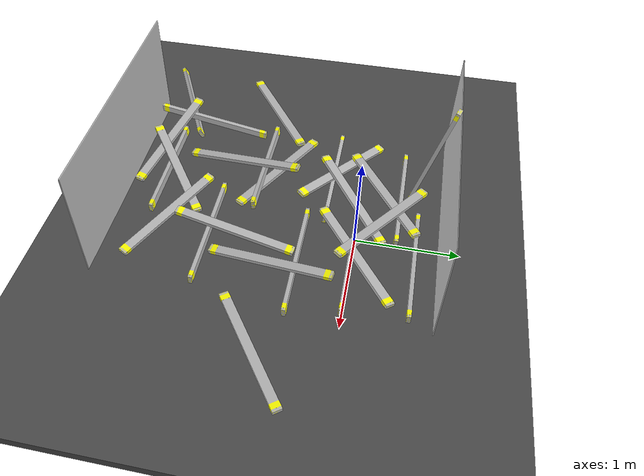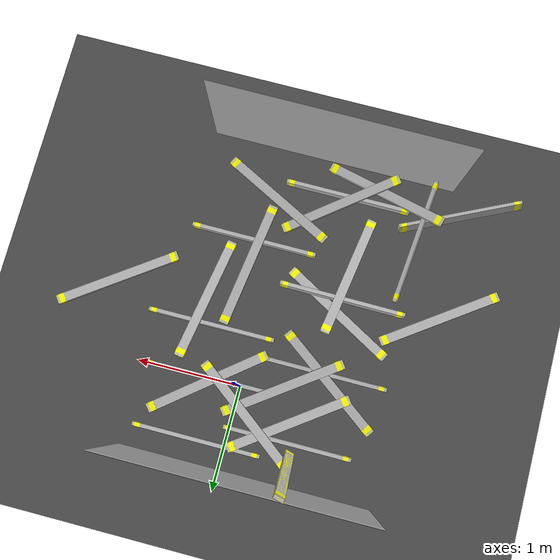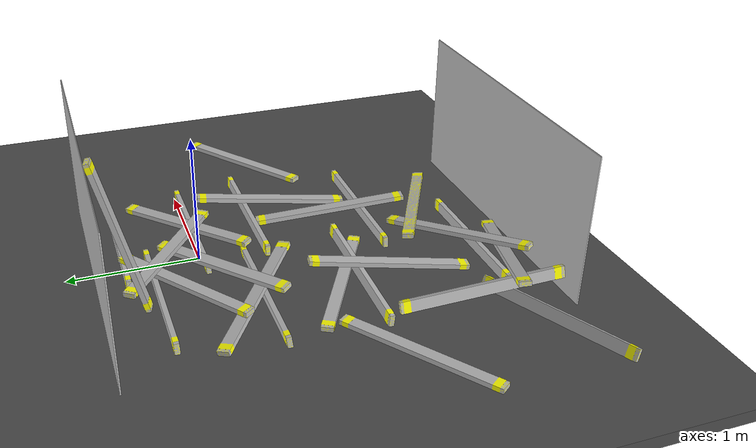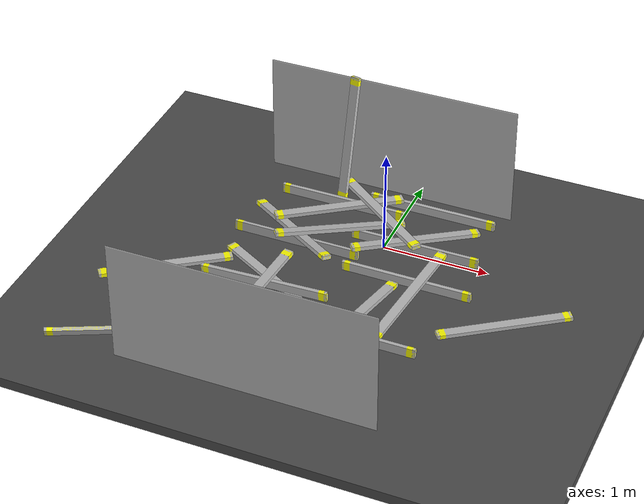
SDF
<sdf version="1.6">
 <world name="default">
  <light name="sun" type="directional">
   <pose>0 0 10 0 -0 0</pose>
   <diffuse>0.8 0.8 0.8 1</diffuse>
   <specular>0.1 0.1 0.1 1</specular>
   <attenuation>
    <range>1000</range>
    <constant>0.9</constant>
    <linear>0.01</linear>
    <quadratic>0.001</quadratic>
   </attenuation>
   <direction>-0.5 0.5 -1</direction>
  </light>
  <model name="ground_plane">
   <static>1</static>
   <link name="link">
    <collision name="collision">
     <geometry><plane><normal>0 0 1</normal><size>100 100</size></plane></geometry>
     <surface><friction><ode><mu>100</mu><mu2>50</mu2></ode></friction></surface>
    </collision>
    <visual name="visual">
     <cast_shadows>0</cast_shadows>
     <geometry><plane><normal>0 0 1</normal><size>100 100</size></plane></geometry>
     <material>
      <script><uri>file://media/materials/scripts/gazebo.material</uri><name>Gazebo/Grey</name></script>
     </material>
    </visual>
   </link>
  </model>
  <gravity>0 0 -9.8</gravity>
  <magnetic_field>6e-06 2.3e-05 -4.2e-05</magnetic_field>
  <atmosphere type="adiabatic"/>
  <physics name="default_physics" default="0" type="ode">
   <max_step_size>0.001</max_step_size>
   <real_time_factor>1</real_time_factor>
   <real_time_update_rate>1000</real_time_update_rate>
  </physics>
  <scene><ambient>0.4 0.4 0.4 1</ambient><background>0.7 0.7 0.7 1</background><shadows>1</shadows></scene>
  <spherical_coordinates>
   <surface_model>EARTH_WGS84</surface_model>
   <latitude_deg>0</latitude_deg>
   <longitude_deg>0</longitude_deg>
   <elevation>0</elevation>
   <heading_deg>0</heading_deg>
  </spherical_coordinates>
  <model name="asphalt_plane">
   <static>1</static>
   <link name="link">
    <collision name="collision"><geometry><box><size>20 20 0.1</size></box></geometry></collision>
    <visual name="visual">
     <cast_shadows>0</cast_shadows>
     <geometry><box><size>20 20 0.1</size></box></geometry>
     <material>
      <script>
       <uri>model://asphalt_plane/materials/scripts</uri>
       <uri>model://asphalt_plane/materials/textures</uri>
       <name>vrc/asphalt</name>
      </script>
     </material>
    </visual>
   </link>
   <pose>-0.246081 -0.022375 0 0 -0 0</pose>
  </model>
  <model name="nist_maze_wall_240">
   <static>1</static>
   <link name="nist__maze_wall_240_link">
    <collision name="collision">
     <geometry>
      <mesh><uri>model://nist_maze_wall_240/meshes/nist_maze_wall_240.dae</uri><scale>1 1 1</scale></mesh>
     </geometry>
    </collision>
    <visual name="visual">
     <geometry>
      <mesh><uri>model://nist_maze_wall_240/meshes/nist_maze_wall_240.dae</uri><scale>1 1 1</scale></mesh>
     </geometry>
    </visual>
   </link>
   <pose>0.945782 0.196984 0.622091 3.14159 -1.56495 3.14159</pose>
  </model>
  <model name="nist_maze_wall_240_clone">
   <static>1</static>
   <link name="nist__maze_wall_240_link">
    <collision name="collision">
     <geometry>
      <mesh><uri>model://nist_maze_wall_240/meshes/nist_maze_wall_240.dae</uri><scale>1 1 1</scale></mesh>
     </geometry>
    </collision>
    <visual name="visual">
     <geometry>
      <mesh><uri>model://nist_maze_wall_240/meshes/nist_maze_wall_240.dae</uri><scale>1 1 1</scale></mesh>
     </geometry>
    </visual>
   </link>
   <pose>0.867042 -2.96104 0.6203 3.14159 -1.56495 3.14159</pose>
  </model>
  <model name="lumber_2x4x48">
   <link name="link">
    <inertial>
     <mass>1.4111</mass>
     <inertia><ixx>0.0011</ixx><ixy>0</ixy><ixz>0</ixz><iyy>0.1771</iyy><iyz>0</iyz><izz>0.1763</izz></inertia>
    </inertial>
    <collision name="collision">
     <geometry><box><size>1.2192 0.038 0.0888</size></box></geometry>
     <surface>
      <bounce><restitution_coefficient>0.01</restitution_coefficient><threshold>5</threshold></bounce>
      <friction><ode><mu>5</mu><mu2>5</mu2></ode></friction>
      <contact>
       <ode>
        <soft_cfm>0.001</soft_cfm>
        <kp>10000</kp>
        <kd>1000</kd>
        <max_vel>0.01</max_vel>
        <min_depth>0.001</min_depth>
       </ode>
      </contact>
     </surface>
    </collision>
    <visual name="visual">
     <geometry><mesh><uri>model://drc_practice_2x4/meshes/2x4x48.dae</uri><scale>1 1 1</scale></mesh></geometry>
    </visual>
   </link>
   <pose>0.30134 -0.010158 0.092012 -0.062994 -0.000823 0.002188</pose>
  </model>
  <model name="lumber_2x4x48_clone">
   <link name="link">
    <inertial>
     <mass>1.4111</mass>
     <inertia><ixx>0.0011</ixx><ixy>0</ixy><ixz>0</ixz><iyy>0.1771</iyy><iyz>0</iyz><izz>0.1763</izz></inertia>
    </inertial>
    <collision name="collision">
     <geometry><box><size>1.2192 0.038 0.0888</size></box></geometry>
     <surface>
      <bounce><restitution_coefficient>0.01</restitution_coefficient><threshold>5</threshold></bounce>
      <friction><ode><mu>5</mu><mu2>5</mu2></ode></friction>
      <contact>
       <ode>
        <soft_cfm>0.001</soft_cfm>
        <kp>10000</kp>
        <kd>1000</kd>
        <max_vel>0.01</max_vel>
        <min_depth>0.001</min_depth>
       </ode>
      </contact>
     </surface>
    </collision>
    <visual name="visual">
     <geometry><mesh><uri>model://drc_practice_2x4/meshes/2x4x48.dae</uri><scale>1 1 1</scale></mesh></geometry>
    </visual>
   </link>
   <pose>-0.565956 0.39355 0.093139 -0.042348 0.000154 4e-06</pose>
  </model>
  <model name="lumber_2x4x48_clone_0">
   <link name="link">
    <inertial>
     <mass>1.4111</mass>
     <inertia><ixx>0.0011</ixx><ixy>0</ixy><ixz>0</ixz><iyy>0.1771</iyy><iyz>0</iyz><izz>0.1763</izz></inertia>
    </inertial>
    <collision name="collision">
     <geometry><box><size>1.2192 0.038 0.0888</size></box></geometry>
     <surface>
      <bounce><restitution_coefficient>0.01</restitution_coefficient><threshold>5</threshold></bounce>
      <friction><ode><mu>5</mu><mu2>5</mu2></ode></friction>
      <contact>
       <ode>
        <soft_cfm>0.001</soft_cfm>
        <kp>10000</kp>
        <kd>1000</kd>
        <max_vel>0.01</max_vel>
        <min_depth>0.001</min_depth>
       </ode>
      </contact>
     </surface>
    </collision>
    <visual name="visual">
     <geometry><mesh><uri>model://drc_practice_2x4/meshes/2x4x48.dae</uri><scale>1 1 1</scale></mesh></geometry>
    </visual>
   </link>
   <pose>-0.733807 -0.316175 0.092796 -0.133339 -1e-05 -0.002496</pose>
  </model>
  <model name="lumber_2x4x48_clone_1">
   <link name="link">
    <inertial>
     <mass>1.4111</mass>
     <inertia><ixx>0.0011</ixx><ixy>0</ixy><ixz>0</ixz><iyy>0.1771</iyy><iyz>0</iyz><izz>0.1763</izz></inertia>
    </inertial>
    <collision name="collision">
     <geometry><box><size>1.2192 0.038 0.0888</size></box></geometry>
     <surface>
      <bounce><restitution_coefficient>0.01</restitution_coefficient><threshold>5</threshold></bounce>
      <friction><ode><mu>5</mu><mu2>5</mu2></ode></friction>
      <contact>
       <ode>
        <soft_cfm>0.001</soft_cfm>
        <kp>10000</kp>
        <kd>1000</kd>
        <max_vel>0.01</max_vel>
        <min_depth>0.001</min_depth>
       </ode>
      </contact>
     </surface>
    </collision>
    <visual name="visual">
     <geometry><mesh><uri>model://drc_practice_2x4/meshes/2x4x48.dae</uri><scale>1 1 1</scale></mesh></geometry>
    </visual>
   </link>
   <pose>0.256 0.577507 0.092775 0.013335 -0.000223 0.000114</pose>
  </model>
  <model name="lumber_2x4x48_clone_2">
   <link name="link">
    <inertial>
     <mass>1.4111</mass>
     <inertia><ixx>0.0011</ixx><ixy>0</ixy><ixz>0</ixz><iyy>0.1771</iyy><iyz>0</iyz><izz>0.1763</izz></inertia>
    </inertial>
    <collision name="collision">
     <geometry><box><size>1.2192 0.038 0.0888</size></box></geometry>
     <surface>
      <bounce><restitution_coefficient>0.01</restitution_coefficient><threshold>5</threshold></bounce>
      <friction><ode><mu>5</mu><mu2>5</mu2></ode></friction>
      <contact>
       <ode>
        <soft_cfm>0.001</soft_cfm>
        <kp>10000</kp>
        <kd>1000</kd>
        <max_vel>0.01</max_vel>
        <min_depth>0.001</min_depth>
       </ode>
      </contact>
     </surface>
    </collision>
    <visual name="visual">
     <geometry><mesh><uri>model://drc_practice_2x4/meshes/2x4x48.dae</uri><scale>1 1 1</scale></mesh></geometry>
    </visual>
   </link>
   <pose>0.403077 -0.49448 0.092799 0.009905 8.9e-05 3e-06</pose>
  </model>
  <model name="lumber_2x4x48_clone_3">
   <link name="link">
    <inertial>
     <mass>1.4111</mass>
     <inertia><ixx>0.0011</ixx><ixy>0</ixy><ixz>0</ixz><iyy>0.1771</iyy><iyz>0</iyz><izz>0.1763</izz></inertia>
    </inertial>
    <collision name="collision">
     <geometry><box><size>1.2192 0.038 0.0888</size></box></geometry>
     <surface>
      <bounce><restitution_coefficient>0.01</restitution_coefficient><threshold>5</threshold></bounce>
      <friction><ode><mu>5</mu><mu2>5</mu2></ode></friction>
      <contact>
       <ode>
        <soft_cfm>0.001</soft_cfm>
        <kp>10000</kp>
        <kd>1000</kd>
        <max_vel>0.01</max_vel>
        <min_depth>0.001</min_depth>
       </ode>
      </contact>
     </surface>
    </collision>
    <visual name="visual">
     <geometry><mesh><uri>model://drc_practice_2x4/meshes/2x4x48.dae</uri><scale>1 1 1</scale></mesh></geometry>
    </visual>
   </link>
   <pose>-0.803898 -0.237275 0.139359 1.42423 -0.107852 -0.630381</pose>
  </model>
  <model name="lumber_2x4x48_clone_3_clone">
   <link name="link">
    <inertial>
     <mass>1.4111</mass>
     <inertia><ixx>0.0011</ixx><ixy>0</ixy><ixz>0</ixz><iyy>0.1771</iyy><iyz>0</iyz><izz>0.1763</izz></inertia>
    </inertial>
    <collision name="collision">
     <geometry><box><size>1.2192 0.038 0.0888</size></box></geometry>
     <surface>
      <bounce><restitution_coefficient>0.01</restitution_coefficient><threshold>5</threshold></bounce>
      <friction><ode><mu>5</mu><mu2>5</mu2></ode></friction>
      <contact>
       <ode>
        <soft_cfm>0.001</soft_cfm>
        <kp>10000</kp>
        <kd>1000</kd>
        <max_vel>0.01</max_vel>
        <min_depth>0.001</min_depth>
       </ode>
      </contact>
     </surface>
    </collision>
    <visual name="visual">
     <geometry><mesh><uri>model://drc_practice_2x4/meshes/2x4x48.dae</uri><scale>1 1 1</scale></mesh></geometry>
    </visual>
   </link>
   <pose>-0.12442 0.242796 0.192663 1.55776 -0.005686 -0.650641</pose>
  </model>
  <model name="lumber_2x4x48_clone_3_clone_0">
   <link name="link">
    <inertial>
     <mass>1.4111</mass>
     <inertia><ixx>0.0011</ixx><ixy>0</ixy><ixz>0</ixz><iyy>0.1771</iyy><iyz>0</iyz><izz>0.1763</izz></inertia>
    </inertial>
    <collision name="collision">
     <geometry><box><size>1.2192 0.038 0.0888</size></box></geometry>
     <surface>
      <bounce><restitution_coefficient>0.01</restitution_coefficient><threshold>5</threshold></bounce>
      <friction><ode><mu>5</mu><mu2>5</mu2></ode></friction>
      <contact>
       <ode>
        <soft_cfm>0.001</soft_cfm>
        <kp>10000</kp>
        <kd>1000</kd>
        <max_vel>0.01</max_vel>
        <min_depth>0.001</min_depth>
       </ode>
      </contact>
     </surface>
    </collision>
    <visual name="visual">
     <geometry><mesh><uri>model://drc_practice_2x4/meshes/2x4x48.dae</uri><scale>1 1 1</scale></mesh></geometry>
    </visual>
   </link>
   <pose>-0.534684 0.2205 0.156484 1.56306 0.005567 0.625301</pose>
  </model>
  <model name="lumber_2x4x48_clone_3_clone_0_clone">
   <link name="link">
    <inertial>
     <mass>1.4111</mass>
     <inertia><ixx>0.0011</ixx><ixy>0</ixy><ixz>0</ixz><iyy>0.1771</iyy><iyz>0</iyz><izz>0.1763</izz></inertia>
    </inertial>
    <collision name="collision">
     <geometry><box><size>1.2192 0.038 0.0888</size></box></geometry>
     <surface>
      <bounce><restitution_coefficient>0.01</restitution_coefficient><threshold>5</threshold></bounce>
      <friction><ode><mu>5</mu><mu2>5</mu2></ode></friction>
      <contact>
       <ode>
        <soft_cfm>0.001</soft_cfm>
        <kp>10000</kp>
        <kd>1000</kd>
        <max_vel>0.01</max_vel>
        <min_depth>0.001</min_depth>
       </ode>
      </contact>
     </surface>
    </collision>
    <visual name="visual">
     <geometry><mesh><uri>model://drc_practice_2x4/meshes/2x4x48.dae</uri><scale>1 1 1</scale></mesh></geometry>
    </visual>
   </link>
   <pose>-0.399251 -0.084944 0.162923 1.43974 0.071986 0.623216</pose>
  </model>
  <model name="lumber_2x4x48_clone_3_clone_0_clone_0">
   <link name="link">
    <inertial>
     <mass>1.4111</mass>
     <inertia><ixx>0.0011</ixx><ixy>0</ixy><ixz>0</ixz><iyy>0.1771</iyy><iyz>0</iyz><izz>0.1763</izz></inertia>
    </inertial>
    <collision name="collision">
     <geometry><box><size>1.2192 0.038 0.0888</size></box></geometry>
     <surface>
      <bounce><restitution_coefficient>0.01</restitution_coefficient><threshold>5</threshold></bounce>
      <friction><ode><mu>5</mu><mu2>5</mu2></ode></friction>
      <contact>
       <ode>
        <soft_cfm>0.001</soft_cfm>
        <kp>10000</kp>
        <kd>1000</kd>
        <max_vel>0.01</max_vel>
        <min_depth>0.001</min_depth>
       </ode>
      </contact>
     </surface>
    </collision>
    <visual name="visual">
     <geometry><mesh><uri>model://drc_practice_2x4/meshes/2x4x48.dae</uri><scale>1 1 1</scale></mesh></geometry>
    </visual>
   </link>
   <pose>0.291584 0.033047 0.149148 1.49355 0.060263 0.669447</pose>
  </model>
  <model name="lumber_2x4x48_clone_3_clone_0_clone_1">
   <link name="link">
    <inertial>
     <mass>1.4111</mass>
     <inertia><ixx>0.0011</ixx><ixy>0</ixy><ixz>0</ixz><iyy>0.1771</iyy><iyz>0</iyz><izz>0.1763</izz></inertia>
    </inertial>
    <collision name="collision">
     <geometry><box><size>1.2192 0.038 0.0888</size></box></geometry>
     <surface>
      <bounce><restitution_coefficient>0.01</restitution_coefficient><threshold>5</threshold></bounce>
      <friction><ode><mu>5</mu><mu2>5</mu2></ode></friction>
      <contact>
       <ode>
        <soft_cfm>0.001</soft_cfm>
        <kp>10000</kp>
        <kd>1000</kd>
        <max_vel>0.01</max_vel>
        <min_depth>0.001</min_depth>
       </ode>
      </contact>
     </surface>
    </collision>
    <visual name="visual">
     <geometry><mesh><uri>model://drc_practice_2x4/meshes/2x4x48.dae</uri><scale>1 1 1</scale></mesh></geometry>
    </visual>
   </link>
   <pose>-0.608864 0.624452 0.646902 1.29634 -1.32932 1.55591</pose>
  </model>
  <model name="lumber_2x4x48_clone_1_clone">
   <link name="link">
    <inertial>
     <mass>1.4111</mass>
     <inertia><ixx>0.0011</ixx><ixy>0</ixy><ixz>0</ixz><iyy>0.1771</iyy><iyz>0</iyz><izz>0.1763</izz></inertia>
    </inertial>
    <collision name="collision">
     <geometry><box><size>1.2192 0.038 0.0888</size></box></geometry>
     <surface>
      <bounce><restitution_coefficient>0.01</restitution_coefficient><threshold>5</threshold></bounce>
      <friction><ode><mu>5</mu><mu2>5</mu2></ode></friction>
      <contact>
       <ode>
        <soft_cfm>0.001</soft_cfm>
        <kp>10000</kp>
        <kd>1000</kd>
        <max_vel>0.01</max_vel>
        <min_depth>0.001</min_depth>
       </ode>
      </contact>
     </surface>
    </collision>
    <visual name="visual">
     <geometry><mesh><uri>model://drc_practice_2x4/meshes/2x4x48.dae</uri><scale>1 1 1</scale></mesh></geometry>
    </visual>
   </link>
   <pose>-0.544827 -2.03168 0.093055 0 0 -0.002181</pose>
  </model>
  <model name="lumber_2x4x48_clone_3_clone_0_clone_0_clone">
   <link name="link">
    <inertial>
     <mass>1.4111</mass>
     <inertia><ixx>0.0011</ixx><ixy>0</ixy><ixz>0</ixz><iyy>0.1771</iyy><iyz>0</iyz><izz>0.1763</izz></inertia>
    </inertial>
    <collision name="collision">
     <geometry><box><size>1.2192 0.038 0.0888</size></box></geometry>
     <surface>
      <bounce><restitution_coefficient>0.01</restitution_coefficient><threshold>5</threshold></bounce>
      <friction><ode><mu>5</mu><mu2>5</mu2></ode></friction>
      <contact>
       <ode>
        <soft_cfm>0.001</soft_cfm>
        <kp>10000</kp>
        <kd>1000</kd>
        <max_vel>0.01</max_vel>
        <min_depth>0.001</min_depth>
       </ode>
      </contact>
     </surface>
    </collision>
    <visual name="visual">
     <geometry><mesh><uri>model://drc_practice_2x4/meshes/2x4x48.dae</uri><scale>1 1 1</scale></mesh></geometry>
    </visual>
   </link>
   <pose>-0.496946 -1.92956 0.14659 1.58018 0.130636 0.634989</pose>
  </model>
  <model name="lumber_2x4x48_clone_3_clone_0_clone_0_clone_0">
   <link name="link">
    <inertial>
     <mass>1.4111</mass>
     <inertia><ixx>0.0011</ixx><ixy>0</ixy><ixz>0</ixz><iyy>0.1771</iyy><iyz>0</iyz><izz>0.1763</izz></inertia>
    </inertial>
    <collision name="collision">
     <geometry><box><size>1.2192 0.038 0.0888</size></box></geometry>
     <surface>
      <bounce><restitution_coefficient>0.01</restitution_coefficient><threshold>5</threshold></bounce>
      <friction><ode><mu>5</mu><mu2>5</mu2></ode></friction>
      <contact>
       <ode>
        <soft_cfm>0.001</soft_cfm>
        <kp>10000</kp>
        <kd>1000</kd>
        <max_vel>0.01</max_vel>
        <min_depth>0.001</min_depth>
       </ode>
      </contact>
     </surface>
    </collision>
    <visual name="visual">
     <geometry><mesh><uri>model://drc_practice_2x4/meshes/2x4x48.dae</uri><scale>1 1 1</scale></mesh></geometry>
    </visual>
   </link>
   <pose>0.099099 -1.83136 0.11054 1.6856 -0.062588 2.65279</pose>
  </model>
  <model name="lumber_2x4x48_clone_3_clone_0_clone_0_clone_0_clone">
   <link name="link">
    <inertial>
     <mass>1.4111</mass>
     <inertia><ixx>0.0011</ixx><ixy>0</ixy><ixz>0</ixz><iyy>0.1771</iyy><iyz>0</iyz><izz>0.1763</izz></inertia>
    </inertial>
    <collision name="collision">
     <geometry><box><size>1.2192 0.038 0.0888</size></box></geometry>
     <surface>
      <bounce><restitution_coefficient>0.01</restitution_coefficient><threshold>5</threshold></bounce>
      <friction><ode><mu>5</mu><mu2>5</mu2></ode></friction>
      <contact>
       <ode>
        <soft_cfm>0.001</soft_cfm>
        <kp>10000</kp>
        <kd>1000</kd>
        <max_vel>0.01</max_vel>
        <min_depth>0.001</min_depth>
       </ode>
      </contact>
     </surface>
    </collision>
    <visual name="visual">
     <geometry><mesh><uri>model://drc_practice_2x4/meshes/2x4x48.dae</uri><scale>1 1 1</scale></mesh></geometry>
    </visual>
   </link>
   <pose>-0.892662 -2.12659 0.171524 1.64243 -0.168141 2.85737</pose>
  </model>
  <model name="lumber_2x4x48_clone_3_clone_0_clone_0_clone_0_clone_0">
   <link name="link">
    <inertial>
     <mass>1.4111</mass>
     <inertia><ixx>0.0011</ixx><ixy>0</ixy><ixz>0</ixz><iyy>0.1771</iyy><iyz>0</iyz><izz>0.1763</izz></inertia>
    </inertial>
    <collision name="collision">
     <geometry><box><size>1.2192 0.038 0.0888</size></box></geometry>
     <surface>
      <bounce><restitution_coefficient>0.01</restitution_coefficient><threshold>5</threshold></bounce>
      <friction><ode><mu>5</mu><mu2>5</mu2></ode></friction>
      <contact>
       <ode>
        <soft_cfm>0.001</soft_cfm>
        <kp>10000</kp>
        <kd>1000</kd>
        <max_vel>0.01</max_vel>
        <min_depth>0.001</min_depth>
       </ode>
      </contact>
     </surface>
    </collision>
    <visual name="visual">
     <geometry><mesh><uri>model://drc_practice_2x4/meshes/2x4x48.dae</uri><scale>1 1 1</scale></mesh></geometry>
    </visual>
   </link>
   <pose>-0.727469 -0.89977 0.067048 1.55714 -0.000368 2.62846</pose>
  </model>
  <model name="lumber_2x4x48_clone_0_clone">
   <link name="link">
    <inertial>
     <mass>1.4111</mass>
     <inertia><ixx>0.0011</ixx><ixy>0</ixy><ixz>0</ixz><iyy>0.1771</iyy><iyz>0</iyz><izz>0.1763</izz></inertia>
    </inertial>
    <collision name="collision">
     <geometry><box><size>1.2192 0.038 0.0888</size></box></geometry>
     <surface>
      <bounce><restitution_coefficient>0.01</restitution_coefficient><threshold>5</threshold></bounce>
      <friction><ode><mu>5</mu><mu2>5</mu2></ode></friction>
      <contact>
       <ode>
        <soft_cfm>0.001</soft_cfm>
        <kp>10000</kp>
        <kd>1000</kd>
        <max_vel>0.01</max_vel>
        <min_depth>0.001</min_depth>
       </ode>
      </contact>
     </surface>
    </collision>
    <visual name="visual">
     <geometry><mesh><uri>model://drc_practice_2x4/meshes/2x4x48.dae</uri><scale>1 1 1</scale></mesh></geometry>
    </visual>
   </link>
   <pose>-0.734906 -1.03609 0.118281 0.077436 -0.039585 -0.001873</pose>
  </model>
  <model name="lumber_2x4x48_clone_0_clone_0">
   <link name="link">
    <inertial>
     <mass>1.4111</mass>
     <inertia><ixx>0.0011</ixx><ixy>0</ixy><ixz>0</ixz><iyy>0.1771</iyy><iyz>0</iyz><izz>0.1763</izz></inertia>
    </inertial>
    <collision name="collision">
     <geometry><box><size>1.2192 0.038 0.0888</size></box></geometry>
     <surface>
      <bounce><restitution_coefficient>0.01</restitution_coefficient><threshold>5</threshold></bounce>
      <friction><ode><mu>5</mu><mu2>5</mu2></ode></friction>
      <contact>
       <ode>
        <soft_cfm>0.001</soft_cfm>
        <kp>10000</kp>
        <kd>1000</kd>
        <max_vel>0.01</max_vel>
        <min_depth>0.001</min_depth>
       </ode>
      </contact>
     </surface>
    </collision>
    <visual name="visual">
     <geometry><mesh><uri>model://drc_practice_2x4/meshes/2x4x48.dae</uri><scale>1 1 1</scale></mesh></geometry>
    </visual>
   </link>
   <pose>0.225576 -1.38996 0.092745 -0.033993 -4.1e-05 -0.002651</pose>
  </model>
  <model name="lumber_2x4x48_clone_3_clone_0_clone_1_clone">
   <link name="link">
    <inertial>
     <mass>1.4111</mass>
     <inertia><ixx>0.0011</ixx><ixy>0</ixy><ixz>0</ixz><iyy>0.1771</iyy><iyz>0</iyz><izz>0.1763</izz></inertia>
    </inertial>
    <collision name="collision">
     <geometry><box><size>1.2192 0.038 0.0888</size></box></geometry>
     <surface>
      <bounce><restitution_coefficient>0.01</restitution_coefficient><threshold>5</threshold></bounce>
      <friction><ode><mu>5</mu><mu2>5</mu2></ode></friction>
      <contact>
       <ode>
        <soft_cfm>0.001</soft_cfm>
        <kp>10000</kp>
        <kd>1000</kd>
        <max_vel>0.01</max_vel>
        <min_depth>0.001</min_depth>
       </ode>
      </contact>
     </surface>
    </collision>
    <visual name="visual">
     <geometry><mesh><uri>model://drc_practice_2x4/meshes/2x4x48.dae</uri><scale>1 1 1</scale></mesh></geometry>
    </visual>
   </link>
   <pose>-0.739623 -1.2685 0.150115 1.55203 -0.134598 1.41573</pose>
  </model>
  <model name="lumber_2x4x48_clone_3_clone_0_clone_1_clone_clone">
   <link name="link">
    <inertial>
     <mass>1.4111</mass>
     <inertia><ixx>0.0011</ixx><ixy>0</ixy><ixz>0</ixz><iyy>0.1771</iyy><iyz>0</iyz><izz>0.1763</izz></inertia>
    </inertial>
    <collision name="collision">
     <geometry><box><size>1.2192 0.038 0.0888</size></box></geometry>
     <surface>
      <bounce><restitution_coefficient>0.01</restitution_coefficient><threshold>5</threshold></bounce>
      <friction><ode><mu>5</mu><mu2>5</mu2></ode></friction>
      <contact>
       <ode>
        <soft_cfm>0.001</soft_cfm>
        <kp>10000</kp>
        <kd>1000</kd>
        <max_vel>0.01</max_vel>
        <min_depth>0.001</min_depth>
       </ode>
      </contact>
     </surface>
    </collision>
    <visual name="visual">
     <geometry><mesh><uri>model://drc_practice_2x4/meshes/2x4x48.dae</uri><scale>1 1 1</scale></mesh></geometry>
    </visual>
   </link>
   <pose>0.211097 -1.13755 0.129471 1.55554 0.100636 1.41589</pose>
  </model>
  <model name="lumber_2x4x48_clone_3_clone_0_clone_1_clone_clone_0">
   <link name="link">
    <inertial>
     <mass>1.4111</mass>
     <inertia><ixx>0.0011</ixx><ixy>0</ixy><ixz>0</ixz><iyy>0.1771</iyy><iyz>0</iyz><izz>0.1763</izz></inertia>
    </inertial>
    <collision name="collision">
     <geometry><box><size>1.2192 0.038 0.0888</size></box></geometry>
     <surface>
      <bounce><restitution_coefficient>0.01</restitution_coefficient><threshold>5</threshold></bounce>
      <friction><ode><mu>5</mu><mu2>5</mu2></ode></friction>
      <contact>
       <ode>
        <soft_cfm>0.001</soft_cfm>
        <kp>10000</kp>
        <kd>1000</kd>
        <max_vel>0.01</max_vel>
        <min_depth>0.001</min_depth>
       </ode>
      </contact>
     </surface>
    </collision>
    <visual name="visual">
     <geometry><mesh><uri>model://drc_practice_2x4/meshes/2x4x48.dae</uri><scale>1 1 1</scale></mesh></geometry>
    </visual>
   </link>
   <pose>0.516116 -0.722251 0.131679 1.58676 -0.104258 1.41784</pose>
  </model>
  <model name="lumber_2x4x48_clone_3_clone_0_clone_1_clone_clone_1">
   <link name="link">
    <inertial>
     <mass>1.4111</mass>
     <inertia><ixx>0.0011</ixx><ixy>0</ixy><ixz>0</ixz><iyy>0.1771</iyy><iyz>0</iyz><izz>0.1763</izz></inertia>
    </inertial>
    <collision name="collision">
     <geometry><box><size>1.2192 0.038 0.0888</size></box></geometry>
     <surface>
      <bounce><restitution_coefficient>0.01</restitution_coefficient><threshold>5</threshold></bounce>
      <friction><ode><mu>5</mu><mu2>5</mu2></ode></friction>
      <contact>
       <ode>
        <soft_cfm>0.001</soft_cfm>
        <kp>10000</kp>
        <kd>1000</kd>
        <max_vel>0.01</max_vel>
        <min_depth>0.001</min_depth>
       </ode>
      </contact>
     </surface>
    </collision>
    <visual name="visual">
     <geometry><mesh><uri>model://drc_practice_2x4/meshes/2x4x48.dae</uri><scale>1 1 1</scale></mesh></geometry>
    </visual>
   </link>
   <pose>-1.27798 -1.74768 0.156228 -2.94221 0.097324 1.47892</pose>
  </model>
  <model name="lumber_2x4x48_clone_3_clone_0_clone_1_clone_clone_2">
   <link name="link">
    <inertial>
     <mass>1.4111</mass>
     <inertia><ixx>0.0011</ixx><ixy>0</ixy><ixz>0</ixz><iyy>0.1771</iyy><iyz>0</iyz><izz>0.1763</izz></inertia>
    </inertial>
    <collision name="collision">
     <geometry><box><size>1.2192 0.038 0.0888</size></box></geometry>
     <surface>
      <bounce><restitution_coefficient>0.01</restitution_coefficient><threshold>5</threshold></bounce>
      <friction><ode><mu>5</mu><mu2>5</mu2></ode></friction>
      <contact>
       <ode>
        <soft_cfm>0.001</soft_cfm>
        <kp>10000</kp>
        <kd>1000</kd>
        <max_vel>0.01</max_vel>
        <min_depth>0.001</min_depth>
       </ode>
      </contact>
     </surface>
    </collision>
    <visual name="visual">
     <geometry><mesh><uri>model://drc_practice_2x4/meshes/2x4x48.dae</uri><scale>1 1 1</scale></mesh></geometry>
    </visual>
   </link>
   <pose>-1.6464 -2.11607 0.093274 0.414285 0.003379 0.44776</pose>
  </model>
  <model name="lumber_2x4x48_clone_3_clone_0_clone_clone">
   <link name="link">
    <inertial>
     <mass>1.4111</mass>
     <inertia><ixx>0.0011</ixx><ixy>0</ixy><ixz>0</ixz><iyy>0.1771</iyy><iyz>0</iyz><izz>0.1763</izz></inertia>
    </inertial>
    <collision name="collision">
     <geometry><box><size>1.2192 0.038 0.0888</size></box></geometry>
     <surface>
      <bounce><restitution_coefficient>0.01</restitution_coefficient><threshold>5</threshold></bounce>
      <friction><ode><mu>5</mu><mu2>5</mu2></ode></friction>
      <contact>
       <ode>
        <soft_cfm>0.001</soft_cfm>
        <kp>10000</kp>
        <kd>1000</kd>
        <max_vel>0.01</max_vel>
        <min_depth>0.001</min_depth>
       </ode>
      </contact>
     </surface>
    </collision>
    <visual name="visual">
     <geometry><mesh><uri>model://drc_practice_2x4/meshes/2x4x48.dae</uri><scale>1 1 1</scale></mesh></geometry>
    </visual>
   </link>
   <pose>-1.67638 -1.09314 0.067655 1.5708 -0 0.618299</pose>
  </model>
  <model name="lumber_2x4x48_clone_3_clone_0_clone_clone_0">
   <link name="link">
    <inertial>
     <mass>1.4111</mass>
     <inertia><ixx>0.0011</ixx><ixy>0</ixy><ixz>0</ixz><iyy>0.1771</iyy><iyz>0</iyz><izz>0.1763</izz></inertia>
    </inertial>
    <collision name="collision">
     <geometry><box><size>1.2192 0.038 0.0888</size></box></geometry>
     <surface>
      <bounce><restitution_coefficient>0.01</restitution_coefficient><threshold>5</threshold></bounce>
      <friction><ode><mu>5</mu><mu2>5</mu2></ode></friction>
      <contact>
       <ode>
        <soft_cfm>0.001</soft_cfm>
        <kp>10000</kp>
        <kd>1000</kd>
        <max_vel>0.01</max_vel>
        <min_depth>0.001</min_depth>
       </ode>
      </contact>
     </surface>
    </collision>
    <visual name="visual">
     <geometry><mesh><uri>model://drc_practice_2x4/meshes/2x4x48.dae</uri><scale>1 1 1</scale></mesh></geometry>
    </visual>
   </link>
   <pose>1.39628 -0.708292 0.067655 1.5708 -0 0.618299</pose>
  </model>
 </world>
</sdf>
